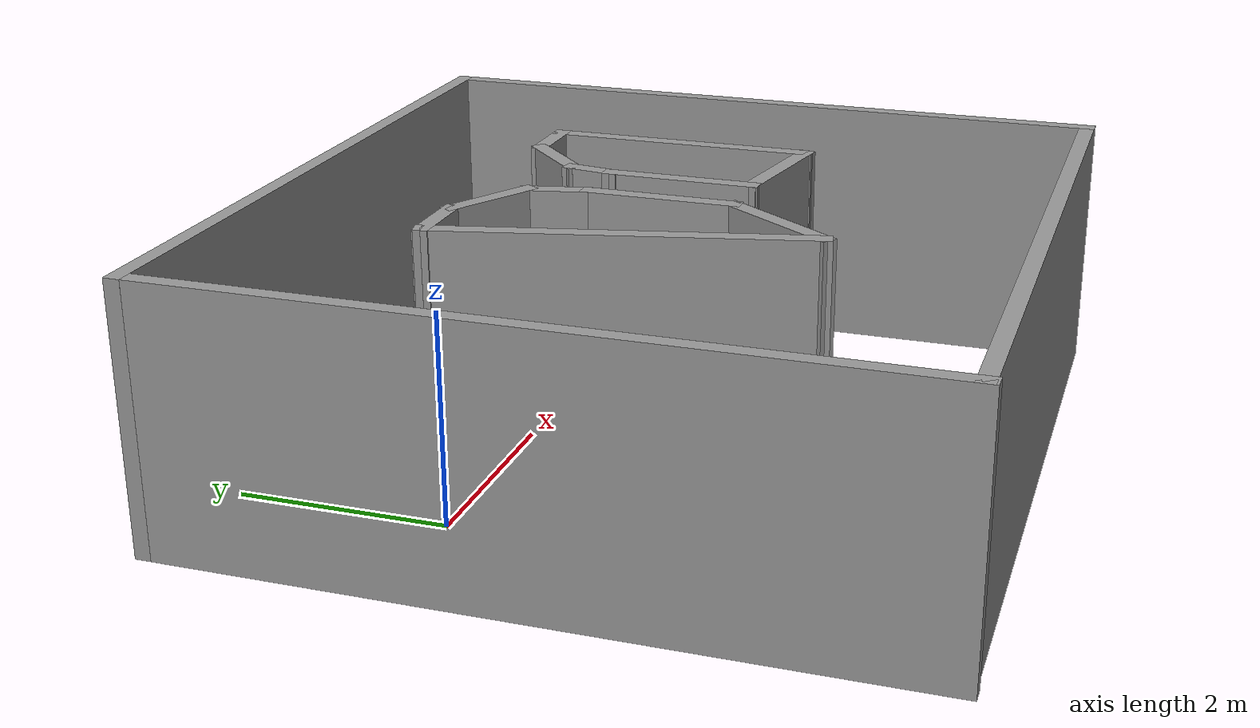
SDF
<?xml version='1.0'?>
<sdf version='1.7'>
  <model name='like_maze_map9'>
    <pose>2.175 -1.265 0 0 -0 0</pose>
    <link name='Wall_10'>
      <collision name='Wall_10_Collision'>
        <geometry>
          <box>
            <size>7 0.15 2.5</size>
          </box>
        </geometry>
        <pose>0 0 1.25 0 -0 0</pose>
      </collision>
      <visual name='Wall_10_Visual'>
        <pose>0 0 1.25 0 -0 0</pose>
        <geometry>
          <box>
            <size>7 0.15 2.5</size>
          </box>
        </geometry>
        <material>
          <script>
            <uri>file://media/materials/scripts/gazebo.material</uri>
            <name>Gazebo/Grey</name>
          </script>
          <ambient>1 1 1 1</ambient>
        </material>
        <meta>
          <layer>0</layer>
        </meta>
      </visual>
      <pose>3.425 0.01 0 0 -0 -1.5708</pose>
    </link>
    <link name='Wall_11'>
      <collision name='Wall_11_Collision'>
        <geometry>
          <box>
            <size>7 0.15 2.5</size>
          </box>
        </geometry>
        <pose>0 0 1.25 0 -0 0</pose>
      </collision>
      <visual name='Wall_11_Visual'>
        <pose>0 0 1.25 0 -0 0</pose>
        <geometry>
          <box>
            <size>7 0.15 2.5</size>
          </box>
        </geometry>
        <material>
          <script>
            <uri>file://media/materials/scripts/gazebo.material</uri>
            <name>Gazebo/Grey</name>
          </script>
          <ambient>1 1 1 1</ambient>
        </material>
        <meta>
          <layer>0</layer>
        </meta>
      </visual>
      <pose>0 -3.415 0 0 -0 3.14159</pose>
    </link>
    <link name='Wall_35'>
      <collision name='Wall_35_Collision'>
        <geometry>
          <box>
            <size>3.55121 0.15 2.5</size>
          </box>
        </geometry>
        <pose>0 0 1.25 0 -0 0</pose>
      </collision>
      <visual name='Wall_35_Visual'>
        <pose>0 0 1.25 0 -0 0</pose>
        <geometry>
          <box>
            <size>3.55121 0.15 2.5</size>
          </box>
        </geometry>
        <material>
          <script>
            <uri>file://media/materials/scripts/gazebo.material</uri>
            <name>Gazebo/Grey</name>
          </script>
          <ambient>1 1 1 1</ambient>
        </material>
        <meta>
          <layer>0</layer>
        </meta>
      </visual>
      <pose>-1.20829 -0.01815 0 0 -0 -1.34346</pose>
    </link>
    <link name='Wall_49'>
      <collision name='Wall_49_Collision'>
        <geometry>
          <box>
            <size>0.906637 0.15 2.5</size>
          </box>
        </geometry>
        <pose>0 0 1.25 0 -0 0</pose>
      </collision>
      <visual name='Wall_49_Visual'>
        <pose>0 0 1.25 0 -0 0</pose>
        <geometry>
          <box>
            <size>0.906637 0.15 2.5</size>
          </box>
        </geometry>
        <material>
          <script>
            <uri>file://media/materials/scripts/gazebo.material</uri>
            <name>Gazebo/Grey</name>
          </script>
          <ambient>1 1 1 1</ambient>
        </material>
        <meta>
          <layer>0</layer>
        </meta>
      </visual>
      <pose>0.795 1.33 0 0 -0 -2.36554</pose>
    </link>
    <link name='Wall_5'>
      <collision name='Wall_5_Collision'>
        <geometry>
          <box>
            <size>7.02 0.15 2.5</size>
          </box>
        </geometry>
        <pose>0 0 1.25 0 -0 0</pose>
      </collision>
      <visual name='Wall_5_Visual'>
        <pose>0 0 1.25 0 -0 0</pose>
        <geometry>
          <box>
            <size>7.02 0.15 2.5</size>
          </box>
        </geometry>
        <material>
          <script>
            <uri>file://media/materials/scripts/gazebo.material</uri>
            <name>Gazebo/Grey</name>
          </script>
          <ambient>1 1 1 1</ambient>
        </material>
        <meta>
          <layer>0</layer>
        </meta>
      </visual>
      <pose>-3.425 0 0 0 -0 -1.5708</pose>
    </link>
    <link name='Wall_53'>
      <collision name='Wall_53_Collision'>
        <geometry>
          <box>
            <size>0.710094 0.15 2.5</size>
          </box>
        </geometry>
        <pose>0 0 1.25 0 -0 0</pose>
      </collision>
      <visual name='Wall_53_Visual'>
        <pose>0 0 1.25 0 -0 0</pose>
        <geometry>
          <box>
            <size>0.710094 0.15 2.5</size>
          </box>
        </geometry>
        <material>
          <script>
            <uri>file://media/materials/scripts/gazebo.material</uri>
            <name>Gazebo/Grey</name>
          </script>
          <ambient>1 1 1 1</ambient>
        </material>
        <meta>
          <layer>0</layer>
        </meta>
      </visual>
      <pose>1.34499 1.59214 0 0 -0 -0.01021</pose>
    </link>
    <link name='Wall_55'>
      <collision name='Wall_55_Collision'>
        <geometry>
          <box>
            <size>2.65008 0.15 2.5</size>
          </box>
        </geometry>
        <pose>0 0 1.25 0 -0 0</pose>
      </collision>
      <visual name='Wall_55_Visual'>
        <pose>0 0 1.25 0 -0 0</pose>
        <geometry>
          <box>
            <size>2.65008 0.15 2.5</size>
          </box>
        </geometry>
        <material>
          <script>
            <uri>file://media/materials/scripts/gazebo.material</uri>
            <name>Gazebo/Grey</name>
          </script>
          <ambient>1 1 1 1</ambient>
        </material>
        <meta>
          <layer>0</layer>
        </meta>
      </visual>
      <pose>1.63498 0.339283 0 0 -0 -1.5628</pose>
    </link>
    <link name='Wall_60'>
      <collision name='Wall_60_Collision'>
        <geometry>
          <box>
            <size>1.5 0.15 2.5</size>
          </box>
        </geometry>
        <pose>0 0 1.25 0 -0 0</pose>
      </collision>
      <visual name='Wall_60_Visual'>
        <pose>0 0 1.25 0 -0 0</pose>
        <geometry>
          <box>
            <size>1.5 0.15 2.5</size>
          </box>
        </geometry>
        <material>
          <script>
            <uri>file://media/materials/scripts/gazebo.material</uri>
            <name>Gazebo/Grey</name>
          </script>
          <ambient>1 1 1 1</ambient>
        </material>
        <meta>
          <layer>0</layer>
        </meta>
      </visual>
      <pose>0.465 -0.02 0 0 -0 -1.5708</pose>
    </link>
    <link name='Wall_61'>
      <collision name='Wall_61_Collision'>
        <geometry>
          <box>
            <size>1.34953 0.15 2.5</size>
          </box>
        </geometry>
        <pose>0 0 1.25 0 -0 0</pose>
      </collision>
      <visual name='Wall_61_Visual'>
        <pose>0 0 1.25 0 -0 0</pose>
        <geometry>
          <box>
            <size>1.34953 0.15 2.5</size>
          </box>
        </geometry>
        <material>
          <script>
            <uri>file://media/materials/scripts/gazebo.material</uri>
            <name>Gazebo/Grey</name>
          </script>
          <ambient>1 1 1 1</ambient>
        </material>
        <meta>
          <layer>0</layer>
        </meta>
      </visual>
      <pose>1.05499 -0.802859 0 0 -0 -0.180818</pose>
    </link>
    <link name='Wall_63'>
      <collision name='Wall_63_Collision'>
        <geometry>
          <box>
            <size>1.5 0.15 2.5</size>
          </box>
        </geometry>
        <pose>0 0 1.25 0 -0 0</pose>
      </collision>
      <visual name='Wall_63_Visual'>
        <pose>0 0 1.25 0 -0 0</pose>
        <geometry>
          <box>
            <size>1.5 0.15 2.5</size>
          </box>
        </geometry>
        <material>
          <script>
            <uri>file://media/materials/scripts/gazebo.material</uri>
            <name>Gazebo/Grey</name>
          </script>
          <ambient>1 1 1 1</ambient>
        </material>
        <meta>
          <layer>0</layer>
        </meta>
      </visual>
      <pose>-0.135 -0.02 0 0 -0 -1.5708</pose>
    </link>
    <link name='Wall_64'>
      <collision name='Wall_64_Collision'>
        <geometry>
          <box>
            <size>1.34854 0.15 2.5</size>
          </box>
        </geometry>
        <pose>0 0 1.25 0 -0 0</pose>
      </collision>
      <visual name='Wall_64_Visual'>
        <pose>0 0 1.25 0 -0 0</pose>
        <geometry>
          <box>
            <size>1.34854 0.15 2.5</size>
          </box>
        </geometry>
        <material>
          <script>
            <uri>file://media/materials/scripts/gazebo.material</uri>
            <name>Gazebo/Grey</name>
          </script>
          <ambient>1 1 1 1</ambient>
        </material>
        <meta>
          <layer>0</layer>
        </meta>
      </visual>
      <pose>-0.48 -1.185 0 0 -0 -2.18426</pose>
    </link>
    <link name='Wall_72'>
      <collision name='Wall_72_Collision'>
        <geometry>
          <box>
            <size>0.75 0.15 2.5</size>
          </box>
        </geometry>
        <pose>0 0 1.25 0 -0 0</pose>
      </collision>
      <visual name='Wall_72_Visual'>
        <pose>0 0 1.25 0 -0 0</pose>
        <geometry>
          <box>
            <size>0.75 0.15 2.5</size>
          </box>
        </geometry>
        <material>
          <script>
            <uri>file://media/materials/scripts/gazebo.material</uri>
            <name>Gazebo/Grey</name>
          </script>
          <ambient>1 1 1 1</ambient>
        </material>
        <meta>
          <layer>0</layer>
        </meta>
      </visual>
      <pose>-1.29157 1.6387 0 0 -0 0</pose>
    </link>
    <link name='Wall_73'>
      <collision name='Wall_73_Collision'>
        <geometry>
          <box>
            <size>1 0.15 2.5</size>
          </box>
        </geometry>
        <pose>0 0 1.25 0 -0 0</pose>
      </collision>
      <visual name='Wall_73_Visual'>
        <pose>0 0 1.25 0 -0 0</pose>
        <geometry>
          <box>
            <size>1 0.15 2.5</size>
          </box>
        </geometry>
        <material>
          <script>
            <uri>file://media/materials/scripts/gazebo.material</uri>
            <name>Gazebo/Grey</name>
          </script>
          <ambient>1 1 1 1</ambient>
        </material>
        <meta>
          <layer>0</layer>
        </meta>
      </visual>
      <pose>-0.623514 1.4262 0 0 -0 -0.523599</pose>
    </link>
    <link name='Wall_75'>
      <collision name='Wall_75_Collision'>
        <geometry>
          <box>
            <size>0.721537 0.15 2.5</size>
          </box>
        </geometry>
        <pose>0 0 1.25 0 -0 0</pose>
      </collision>
      <visual name='Wall_75_Visual'>
        <pose>0 0 1.25 0 -0 0</pose>
        <geometry>
          <box>
            <size>0.721537 0.15 2.5</size>
          </box>
        </geometry>
        <material>
          <script>
            <uri>file://media/materials/scripts/gazebo.material</uri>
            <name>Gazebo/Grey</name>
          </script>
          <ambient>1 1 1 1</ambient>
        </material>
        <meta>
          <layer>0</layer>
        </meta>
      </visual>
      <pose>-0.195227 0.93435 0 0 -0 -1.35845</pose>
    </link>
    <link name='Wall_77'>
      <collision name='Wall_77_Collision'>
        <geometry>
          <box>
            <size>0.564367 0.15 2.5</size>
          </box>
        </geometry>
        <pose>0 0 1.25 0 -0 0</pose>
      </collision>
      <visual name='Wall_77_Visual'>
        <pose>0 0 1.25 0 -0 0</pose>
        <geometry>
          <box>
            <size>0.564367 0.15 2.5</size>
          </box>
        </geometry>
        <material>
          <script>
            <uri>file://media/materials/scripts/gazebo.material</uri>
            <name>Gazebo/Grey</name>
          </script>
          <ambient>1 1 1 1</ambient>
        </material>
        <meta>
          <layer>0</layer>
        </meta>
      </visual>
      <pose>0.495 0.86 0 0 -0 -1.71611</pose>
    </link>
    <link name='Wall_9'>
      <collision name='Wall_9_Collision'>
        <geometry>
          <box>
            <size>7 0.15 2.5</size>
          </box>
        </geometry>
        <pose>0 0 1.25 0 -0 0</pose>
      </collision>
      <visual name='Wall_9_Visual'>
        <pose>0 0 1.25 0 -0 0</pose>
        <geometry>
          <box>
            <size>7 0.15 2.5</size>
          </box>
        </geometry>
        <material>
          <script>
            <uri>file://media/materials/scripts/gazebo.material</uri>
            <name>Gazebo/Grey</name>
          </script>
          <ambient>1 1 1 1</ambient>
        </material>
        <meta>
          <layer>0</layer>
        </meta>
      </visual>
      <pose>0 3.435 0 0 -0 0</pose>
    </link>
    <static>1</static>
  </model>
</sdf>
